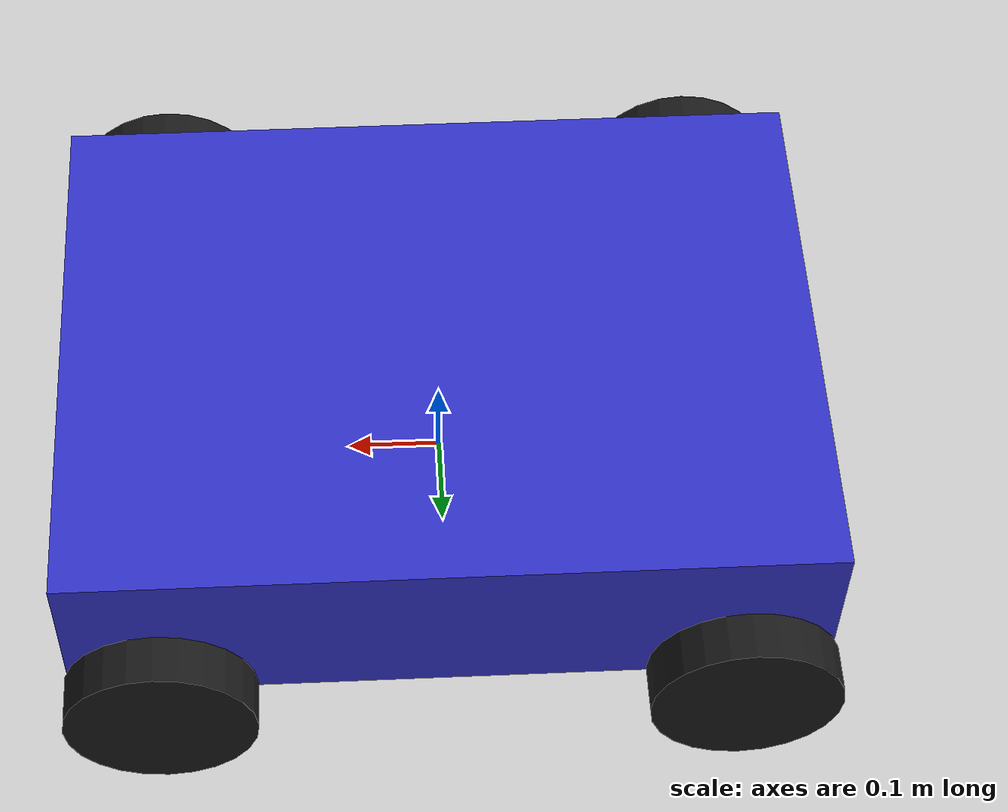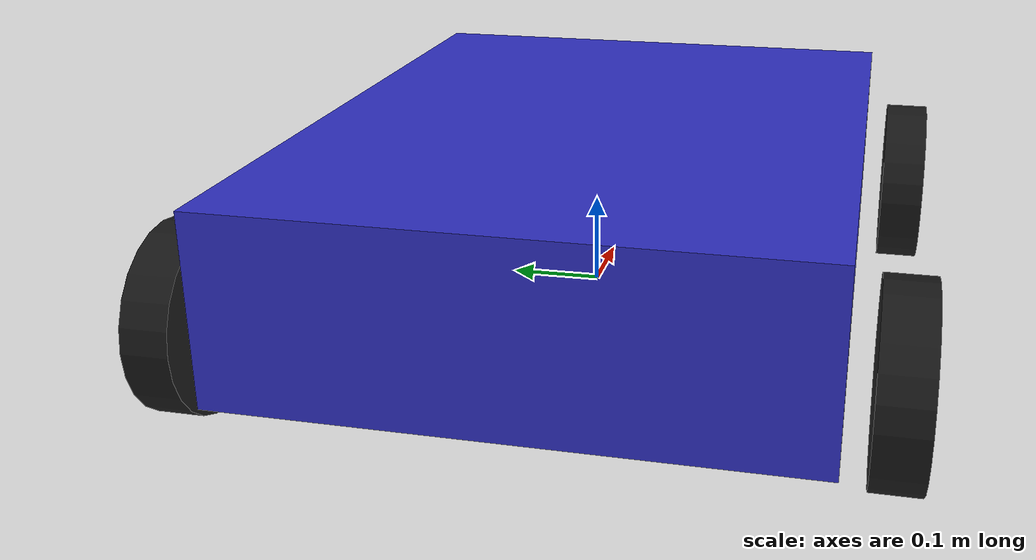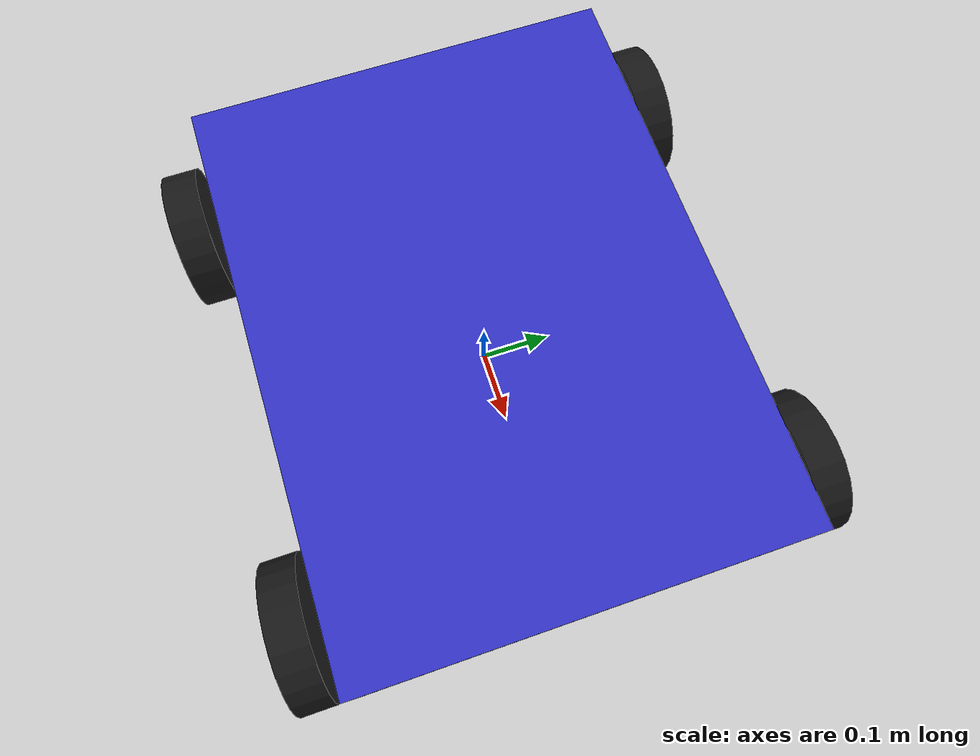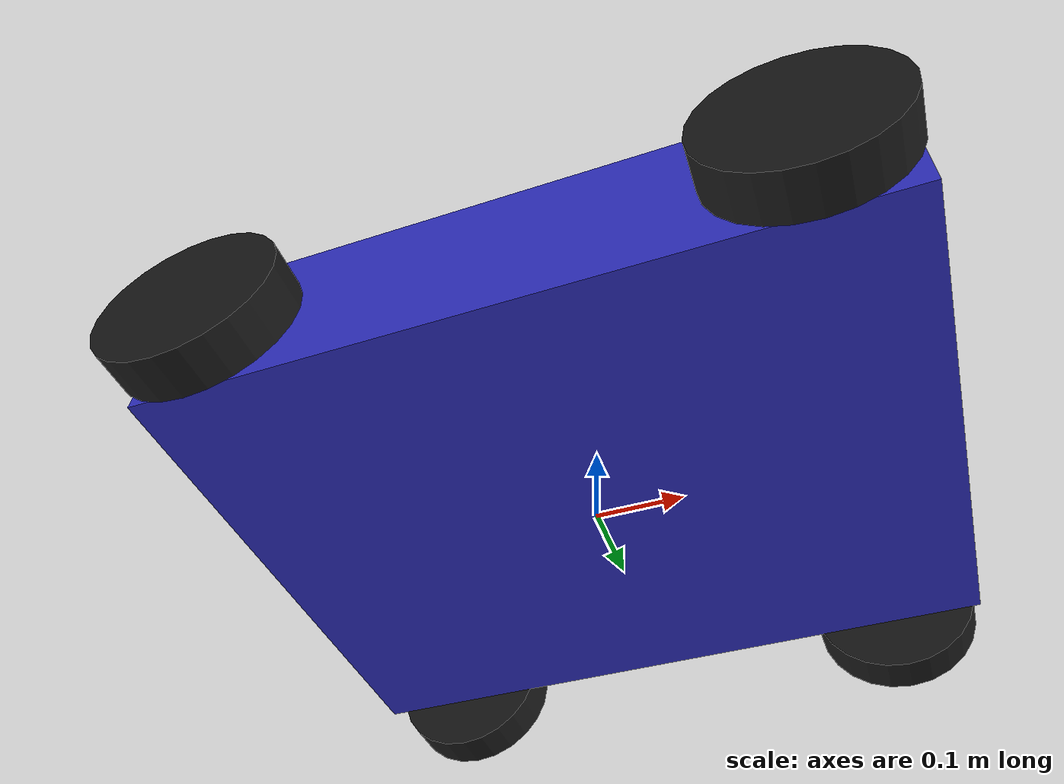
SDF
<?xml version="1.0" ?>
<sdf version="1.6">
  <model name="simple_transport_robot">
    <pose>0 0 0.1 0 0 0</pose>

    <!-- Base Link -->
    <link name="base_link">
      <pose>0 0 0 0 0 0</pose>
      <inertial>
        <mass>20.0</mass>
        <inertia>
          <ixx>1.0</ixx>
          <ixy>0.0</ixy>
          <ixz>0.0</ixz>
          <iyy>1.0</iyy>
          <iyz>0.0</iyz>
          <izz>1.0</izz>
        </inertia>
      </inertial>
      <visual name="base_visual">
        <geometry>
          <box>
            <size>0.8 0.6 0.2</size>
          </box>
        </geometry>
        <material>
          <ambient>0.2 0.2 0.8 1.0</ambient>
          <diffuse>0.2 0.2 0.8 1.0</diffuse>
        </material>
      </visual>
      <collision name="base_collision">
        <geometry>
          <box>
            <size>0.8 0.6 0.2</size>
          </box>
        </geometry>
      </collision>
    </link>

    <!-- Front Left Wheel -->
    <link name="front_left_wheel">
      <pose>0.3 0.35 -0.05 1.5708 0 0</pose>
      <inertial>
        <mass>2.0</mass>
        <inertia>
          <ixx>0.1</ixx>
          <ixy>0.0</ixy>
          <ixz>0.0</ixz>
          <iyy>0.1</iyy>
          <iyz>0.0</iyz>
          <izz>0.1</izz>
        </inertia>
      </inertial>
      <visual name="wheel_visual">
        <geometry>
          <cylinder>
            <radius>0.1</radius>
            <length>0.05</length>
          </cylinder>
        </geometry>
        <material>
          <ambient>0.1 0.1 0.1 1.0</ambient>
          <diffuse>0.1 0.1 0.1 1.0</diffuse>
        </material>
      </visual>
      <collision name="wheel_collision">
        <geometry>
          <cylinder>
            <radius>0.1</radius>
            <length>0.05</length>
          </cylinder>
        </geometry>
      </collision>
    </link>

    <!-- Front Right Wheel -->
    <link name="front_right_wheel">
      <pose>0.3 -0.35 -0.05 1.5708 0 0</pose>
      <inertial>
        <mass>2.0</mass>
        <inertia>
          <ixx>0.1</ixx>
          <ixy>0.0</ixy>
          <ixz>0.0</ixz>
          <iyy>0.1</iyy>
          <iyz>0.0</iyz>
          <izz>0.1</izz>
        </inertia>
      </inertial>
      <visual name="wheel_visual">
        <geometry>
          <cylinder>
            <radius>0.1</radius>
            <length>0.05</length>
          </cylinder>
        </geometry>
        <material>
          <ambient>0.1 0.1 0.1 1.0</ambient>
          <diffuse>0.1 0.1 0.1 1.0</diffuse>
        </material>
      </visual>
      <collision name="wheel_collision">
        <geometry>
          <cylinder>
            <radius>0.1</radius>
            <length>0.05</length>
          </cylinder>
        </geometry>
      </collision>
    </link>

    <!-- Rear Left Wheel -->
    <link name="rear_left_wheel">
      <pose>-0.3 0.35 -0.05 1.5708 0 0</pose>
      <inertial>
        <mass>2.0</mass>
        <inertia>
          <ixx>0.1</ixx>
          <ixy>0.0</ixy>
          <ixz>0.0</ixz>
          <iyy>0.1</iyy>
          <iyz>0.0</iyz>
          <izz>0.1</izz>
        </inertia>
      </inertial>
      <visual name="wheel_visual">
        <geometry>
          <cylinder>
            <radius>0.1</radius>
            <length>0.05</length>
          </cylinder>
        </geometry>
        <material>
          <ambient>0.1 0.1 0.1 1.0</ambient>
          <diffuse>0.1 0.1 0.1 1.0</diffuse>
        </material>
      </visual>
      <collision name="wheel_collision">
        <geometry>
          <cylinder>
            <radius>0.1</radius>
            <length>0.05</length>
          </cylinder>
        </geometry>
      </collision>
    </link>

    <!-- Rear Right Wheel -->
    <link name="rear_right_wheel">
      <pose>-0.3 -0.35 -0.05 1.5708 0 0</pose>
      <inertial>
        <mass>2.0</mass>
        <inertia>
          <ixx>0.1</ixx>
          <ixy>0.0</ixy>
          <ixz>0.0</ixz>
          <iyy>0.1</iyy>
          <iyz>0.0</iyz>
          <izz>0.1</izz>
        </inertia>
      </inertial>
      <visual name="wheel_visual">
        <geometry>
          <cylinder>
            <radius>0.1</radius>
            <length>0.05</length>
          </cylinder>
        </geometry>
        <material>
          <ambient>0.1 0.1 0.1 1.0</ambient>
          <diffuse>0.1 0.1 0.1 1.0</diffuse>
        </material>
      </visual>
      <collision name="wheel_collision">
        <geometry>
          <cylinder>
            <radius>0.1</radius>
            <length>0.05</length>
          </cylinder>
        </geometry>
      </collision>
    </link>

    <!-- Joints -->
    <joint name="front_left_wheel_joint" type="revolute">
      <parent>base_link</parent>
      <child>front_left_wheel</child>
      <axis>
        <xyz>0 1 0</xyz>
      </axis>
    </joint>

    <joint name="front_right_wheel_joint" type="revolute">
      <parent>base_link</parent>
      <child>front_right_wheel</child>
      <axis>
        <xyz>0 1 0</xyz>
      </axis>
    </joint>

    <joint name="rear_left_wheel_joint" type="revolute">
      <parent>base_link</parent>
      <child>rear_left_wheel</child>
      <axis>
        <xyz>0 1 0</xyz>
      </axis>
    </joint>

    <joint name="rear_right_wheel_joint" type="revolute">
      <parent>base_link</parent>
      <child>rear_right_wheel</child>
      <axis>
        <xyz>0 1 0</xyz>
      </axis>
    </joint>

    <!-- Differential Drive Plugin -->
    <plugin name="differential_drive_controller" filename="libgazebo_ros_diff_drive.so">
      <update_rate>30</update_rate>
      <left_joint>front_left_wheel_joint</left_joint>
      <right_joint>front_right_wheel_joint</right_joint>
      <wheel_separation>0.6</wheel_separation>
      <wheel_diameter>0.2</wheel_diameter>
      <max_wheel_torque>20</max_wheel_torque>
      <max_wheel_acceleration>1.0</max_wheel_acceleration>
      <command_topic>cmd_vel</command_topic>
      <publish_odom>true</publish_odom>
      <publish_odom_tf>true</publish_odom_tf>
      <publish_wheel_tf>true</publish_wheel_tf>
      <odometry_topic>odom</odometry_topic>
      <odometry_frame>odom</odometry_frame>
      <robot_base_frame>base_link</robot_base_frame>
    </plugin>

  </model>
</sdf>
